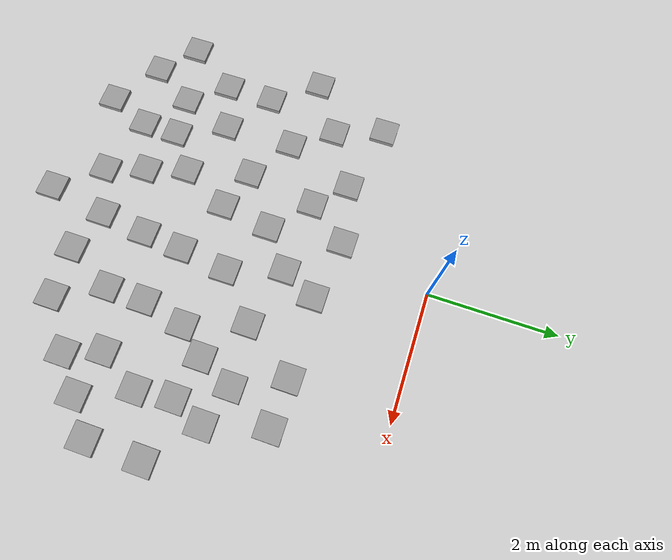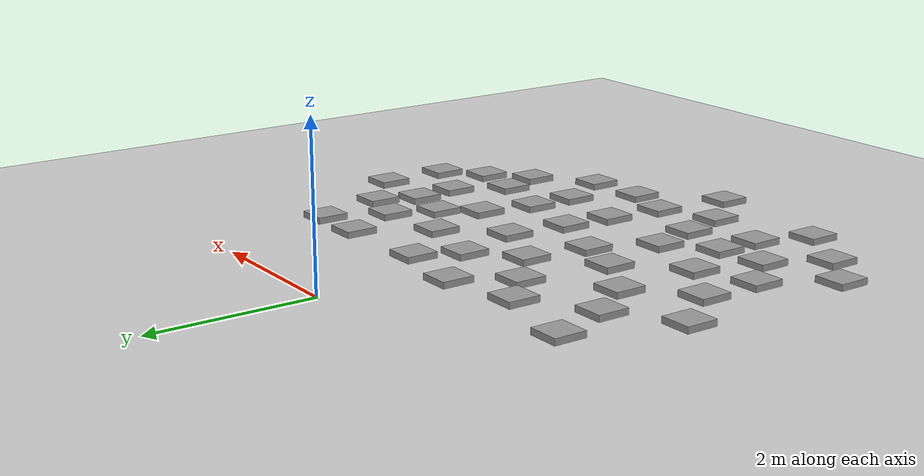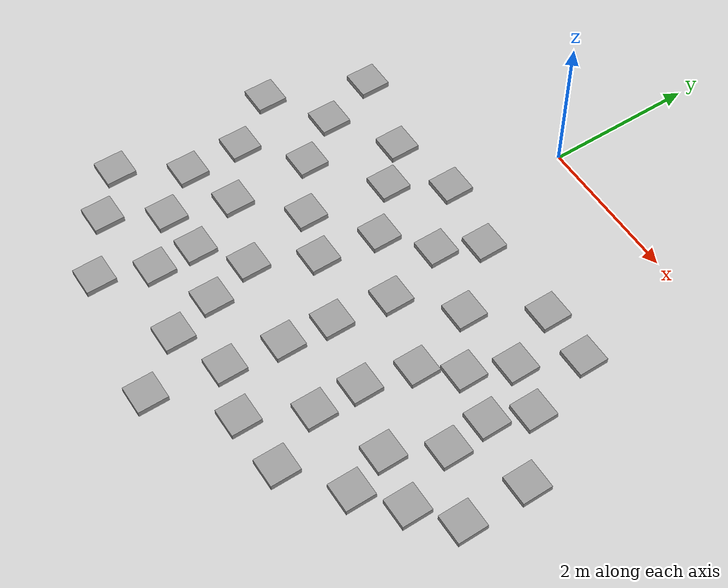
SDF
<sdf version="1.7">
 <world name="default">
  <light name="sun" type="directional">
   <pose>0 0 10 0 -0 0</pose>
   <diffuse>0.8 0.8 0.8 1</diffuse>
   <specular>0.2 0.2 0.2 1</specular>
   <attenuation>
    <range>1000</range>
    <constant>0.9</constant>
    <linear>0.01</linear>
    <quadratic>0.001</quadratic>
   </attenuation>
   <direction>-0.5 0.1 -0.9</direction>
   <spot><inner_angle>0</inner_angle><outer_angle>0</outer_angle><falloff>0</falloff></spot>
  </light>
  <model name="ground_plane">
   <static>1</static>
   <link name="link">
    <collision name="collision">
     <geometry><plane><normal>0 0 1</normal><size>100 100</size></plane></geometry>
     <surface>
      <contact><collide_bitmask>65535</collide_bitmask></contact>
      <friction><ode><mu>100</mu><mu2>50</mu2></ode></friction>
     </surface>
    </collision>
    <visual name="visual">
     <cast_shadows>0</cast_shadows>
     <geometry><plane><normal>0 0 1</normal><size>100 100</size></plane></geometry>
     <material>
      <script><uri>file://media/materials/scripts/gazebo.material</uri><name>Gazebo/Grey</name></script>
     </material>
    </visual>
   </link>
  </model>
  <gravity>0 0 -9.8</gravity>
  <magnetic_field>6e-06 2.3e-05 -4.2e-05</magnetic_field>
  <atmosphere type="adiabatic"/>
  <physics name="default_physics" default="0" type="ode">
   <max_step_size>0.001</max_step_size>
   <real_time_factor>1</real_time_factor>
   <real_time_update_rate>1000</real_time_update_rate>
  </physics>
  <scene><ambient>0.4 0.4 0.4 1</ambient><background>0.7 0.7 0.7 1</background><shadows>1</shadows></scene>
  <audio><device>default</device></audio>
  <spherical_coordinates>
   <surface_model>EARTH_WGS84</surface_model>
   <latitude_deg>0</latitude_deg>
   <longitude_deg>0</longitude_deg>
   <elevation>0</elevation>
   <heading_deg>0</heading_deg>
  </spherical_coordinates>
  <model name="0.4*0.4*0.08">
   <pose>-0.938095 -0.976748 0 0 -0 0</pose>
   <link name="Stairs_1">
    <visual name="Stairs_1_Visual_0">
     <pose>-0.8 -1.775 0.04 0 -0 0</pose>
     <geometry><box><size>0.4 0.4 0.08</size></box></geometry>
     <material>
      <script><uri>file://media/materials/scripts/gazebo.material</uri><name>Gazebo/Grey</name></script>
      <ambient>1 1 1 1</ambient>
     </material>
     <meta><layer>0</layer></meta>
    </visual>
    <collision name="Stairs_1_Collision_0">
     <geometry><box><size>0.4 0.4 0.08</size></box></geometry>
     <pose>-0.8 -1.775 0.04 0 -0 0</pose>
    </collision>
   </link>
   <static>1</static>
  </model>
  <model name="0.4*0.4*0.08_clone">
   <pose>0.553519 -0.838178 0 0 -0 0</pose>
   <link name="Stairs_1">
    <visual name="Stairs_1_Visual_0">
     <pose>-0.8 -1.775 0.04 0 -0 0</pose>
     <geometry><box><size>0.4 0.4 0.08</size></box></geometry>
     <material>
      <script><uri>file://media/materials/scripts/gazebo.material</uri><name>Gazebo/Grey</name></script>
      <ambient>1 1 1 1</ambient>
     </material>
     <meta><layer>0</layer></meta>
    </visual>
    <collision name="Stairs_1_Collision_0">
     <geometry><box><size>0.4 0.4 0.08</size></box></geometry>
     <pose>-0.8 -1.775 0.04 0 -0 0</pose>
    </collision>
   </link>
   <static>1</static>
  </model>
  <model name="0.4*0.4*0.08_clone_0">
   <pose>-0.038304 -0.313378 0 0 -0 0</pose>
   <link name="Stairs_1">
    <visual name="Stairs_1_Visual_0">
     <pose>-0.8 -1.775 0.04 0 -0 0</pose>
     <geometry><box><size>0.4 0.4 0.08</size></box></geometry>
     <material>
      <script><uri>file://media/materials/scripts/gazebo.material</uri><name>Gazebo/Grey</name></script>
      <ambient>1 1 1 1</ambient>
     </material>
     <meta><layer>0</layer></meta>
    </visual>
    <collision name="Stairs_1_Collision_0">
     <geometry><box><size>0.4 0.4 0.08</size></box></geometry>
     <pose>-0.8 -1.775 0.04 0 -0 0</pose>
    </collision>
   </link>
   <static>1</static>
  </model>
  <model name="0.4*0.4*0.08_clone_1">
   <pose>1.13438 -0.375687 0 0 -0 0</pose>
   <link name="Stairs_1">
    <visual name="Stairs_1_Visual_0">
     <pose>-0.8 -1.775 0.04 0 -0 0</pose>
     <geometry><box><size>0.4 0.4 0.08</size></box></geometry>
     <material>
      <script><uri>file://media/materials/scripts/gazebo.material</uri><name>Gazebo/Grey</name></script>
      <ambient>1 1 1 1</ambient>
     </material>
     <meta><layer>0</layer></meta>
    </visual>
    <collision name="Stairs_1_Collision_0">
     <geometry><box><size>0.4 0.4 0.08</size></box></geometry>
     <pose>-0.8 -1.775 0.04 0 -0 0</pose>
    </collision>
   </link>
   <static>1</static>
  </model>
  <model name="0.4*0.4*0.08_clone_2">
   <pose>1.41877 -1.22784 0 0 -0 0</pose>
   <link name="Stairs_1">
    <visual name="Stairs_1_Visual_0">
     <pose>-0.8 -1.775 0.04 0 -0 0</pose>
     <geometry><box><size>0.4 0.4 0.08</size></box></geometry>
     <material>
      <script><uri>file://media/materials/scripts/gazebo.material</uri><name>Gazebo/Grey</name></script>
      <ambient>1 1 1 1</ambient>
     </material>
     <meta><layer>0</layer></meta>
    </visual>
    <collision name="Stairs_1_Collision_0">
     <geometry><box><size>0.4 0.4 0.08</size></box></geometry>
     <pose>-0.8 -1.775 0.04 0 -0 0</pose>
    </collision>
   </link>
   <static>1</static>
  </model>
  <model name="0.4*0.4*0.08_clone_3">
   <pose>2.08527 -0.616545 0 0 -0 0</pose>
   <link name="Stairs_1">
    <visual name="Stairs_1_Visual_0">
     <pose>-0.8 -1.775 0.04 0 -0 0</pose>
     <geometry><box><size>0.4 0.4 0.08</size></box></geometry>
     <material>
      <script><uri>file://media/materials/scripts/gazebo.material</uri><name>Gazebo/Grey</name></script>
      <ambient>1 1 1 1</ambient>
     </material>
     <meta><layer>0</layer></meta>
    </visual>
    <collision name="Stairs_1_Collision_0">
     <geometry><box><size>0.4 0.4 0.08</size></box></geometry>
     <pose>-0.8 -1.775 0.04 0 -0 0</pose>
    </collision>
   </link>
   <static>1</static>
  </model>
  <model name="0.4*0.4*0.08_clone_4">
   <pose>2.65153 0.212197 0 0 -0 0</pose>
   <link name="Stairs_1">
    <visual name="Stairs_1_Visual_0">
     <pose>-0.8 -1.775 0.04 0 -0 0</pose>
     <geometry><box><size>0.4 0.4 0.08</size></box></geometry>
     <material>
      <script><uri>file://media/materials/scripts/gazebo.material</uri><name>Gazebo/Grey</name></script>
      <ambient>1 1 1 1</ambient>
     </material>
     <meta><layer>0</layer></meta>
    </visual>
    <collision name="Stairs_1_Collision_0">
     <geometry><box><size>0.4 0.4 0.08</size></box></geometry>
     <pose>-0.8 -1.775 0.04 0 -0 0</pose>
    </collision>
   </link>
   <static>1</static>
  </model>
  <model name="0.4*0.4*0.08_clone_5">
   <pose>1.39579 0.164665 0 0 -0 0</pose>
   <link name="Stairs_1">
    <visual name="Stairs_1_Visual_0">
     <pose>-0.8 -1.775 0.04 0 -0 0</pose>
     <geometry><box><size>0.4 0.4 0.08</size></box></geometry>
     <material>
      <script><uri>file://media/materials/scripts/gazebo.material</uri><name>Gazebo/Grey</name></script>
      <ambient>1 1 1 1</ambient>
     </material>
     <meta><layer>0</layer></meta>
    </visual>
    <collision name="Stairs_1_Collision_0">
     <geometry><box><size>0.4 0.4 0.08</size></box></geometry>
     <pose>-0.8 -1.775 0.04 0 -0 0</pose>
    </collision>
   </link>
   <static>1</static>
  </model>
  <model name="0.4*0.4*0.08_clone_6">
   <pose>0.429247 0.328334 0 0 -0 0</pose>
   <link name="Stairs_1">
    <visual name="Stairs_1_Visual_0">
     <pose>-0.8 -1.775 0.04 0 -0 0</pose>
     <geometry><box><size>0.4 0.4 0.08</size></box></geometry>
     <material>
      <script><uri>file://media/materials/scripts/gazebo.material</uri><name>Gazebo/Grey</name></script>
      <ambient>1 1 1 1</ambient>
     </material>
     <meta><layer>0</layer></meta>
    </visual>
    <collision name="Stairs_1_Collision_0">
     <geometry><box><size>0.4 0.4 0.08</size></box></geometry>
     <pose>-0.8 -1.775 0.04 0 -0 0</pose>
    </collision>
   </link>
   <static>1</static>
  </model>
  <model name="0.4*0.4*0.08_clone_7">
   <pose>-0.520775 0.13426 0 0 -0 0</pose>
   <link name="Stairs_1">
    <visual name="Stairs_1_Visual_0">
     <pose>-0.8 -1.775 0.04 0 -0 0</pose>
     <geometry><box><size>0.4 0.4 0.08</size></box></geometry>
     <material>
      <script><uri>file://media/materials/scripts/gazebo.material</uri><name>Gazebo/Grey</name></script>
      <ambient>1 1 1 1</ambient>
     </material>
     <meta><layer>0</layer></meta>
    </visual>
    <collision name="Stairs_1_Collision_0">
     <geometry><box><size>0.4 0.4 0.08</size></box></geometry>
     <pose>-0.8 -1.775 0.04 0 -0 0</pose>
    </collision>
   </link>
   <static>1</static>
  </model>
  <model name="0.4*0.4*0.08_clone_8">
   <pose>-1.3777 -0.37098 0 0 -0 0</pose>
   <link name="Stairs_1">
    <visual name="Stairs_1_Visual_0">
     <pose>-0.8 -1.775 0.04 0 -0 0</pose>
     <geometry><box><size>0.4 0.4 0.08</size></box></geometry>
     <material>
      <script><uri>file://media/materials/scripts/gazebo.material</uri><name>Gazebo/Grey</name></script>
      <ambient>1 1 1 1</ambient>
     </material>
     <meta><layer>0</layer></meta>
    </visual>
    <collision name="Stairs_1_Collision_0">
     <geometry><box><size>0.4 0.4 0.08</size></box></geometry>
     <pose>-0.8 -1.775 0.04 0 -0 0</pose>
    </collision>
   </link>
   <static>1</static>
  </model>
  <model name="0.4*0.4*0.08_clone_9">
   <pose>-0.226018 -1.42801 0 0 -0 0</pose>
   <link name="Stairs_1">
    <visual name="Stairs_1_Visual_0">
     <pose>-0.8 -1.775 0.04 0 -0 0</pose>
     <geometry><box><size>0.4 0.4 0.08</size></box></geometry>
     <material>
      <script><uri>file://media/materials/scripts/gazebo.material</uri><name>Gazebo/Grey</name></script>
      <ambient>1 1 1 1</ambient>
     </material>
     <meta><layer>0</layer></meta>
    </visual>
    <collision name="Stairs_1_Collision_0">
     <geometry><box><size>0.4 0.4 0.08</size></box></geometry>
     <pose>-0.8 -1.775 0.04 0 -0 0</pose>
    </collision>
   </link>
   <static>1</static>
  </model>
  <model name="0.4*0.4*0.08_clone_10">
   <pose>0.423919 -1.64325 0 0 -0 0</pose>
   <link name="Stairs_1">
    <visual name="Stairs_1_Visual_0">
     <pose>-0.8 -1.775 0.04 0 -0 0</pose>
     <geometry><box><size>0.4 0.4 0.08</size></box></geometry>
     <material>
      <script><uri>file://media/materials/scripts/gazebo.material</uri><name>Gazebo/Grey</name></script>
      <ambient>1 1 1 1</ambient>
     </material>
     <meta><layer>0</layer></meta>
    </visual>
    <collision name="Stairs_1_Collision_0">
     <geometry><box><size>0.4 0.4 0.08</size></box></geometry>
     <pose>-0.8 -1.775 0.04 0 -0 0</pose>
    </collision>
   </link>
   <static>1</static>
  </model>
  <model name="0.4*0.4*0.08_clone_11">
   <pose>2.41393 -1.52262 0 0 -0 0</pose>
   <link name="Stairs_1">
    <visual name="Stairs_1_Visual_0">
     <pose>-0.8 -1.775 0.04 0 -0 0</pose>
     <geometry><box><size>0.4 0.4 0.08</size></box></geometry>
     <material>
      <script><uri>file://media/materials/scripts/gazebo.material</uri><name>Gazebo/Grey</name></script>
      <ambient>1 1 1 1</ambient>
     </material>
     <meta><layer>0</layer></meta>
    </visual>
    <collision name="Stairs_1_Collision_0">
     <geometry><box><size>0.4 0.4 0.08</size></box></geometry>
     <pose>-0.8 -1.775 0.04 0 -0 0</pose>
    </collision>
   </link>
   <static>1</static>
  </model>
  <model name="0.4*0.4*0.08_clone_12">
   <pose>2.77082 -1.09886 0 0 -0 0</pose>
   <link name="Stairs_1">
    <visual name="Stairs_1_Visual_0">
     <pose>-0.8 -1.775 0.04 0 -0 0</pose>
     <geometry><box><size>0.4 0.4 0.08</size></box></geometry>
     <material>
      <script><uri>file://media/materials/scripts/gazebo.material</uri><name>Gazebo/Grey</name></script>
      <ambient>1 1 1 1</ambient>
     </material>
     <meta><layer>0</layer></meta>
    </visual>
    <collision name="Stairs_1_Collision_0">
     <geometry><box><size>0.4 0.4 0.08</size></box></geometry>
     <pose>-0.8 -1.775 0.04 0 -0 0</pose>
    </collision>
   </link>
   <static>1</static>
  </model>
  <model name="0.4*0.4*0.08_clone_13">
   <pose>3.02679 -0.53823 0 0 -0 0</pose>
   <link name="Stairs_1">
    <visual name="Stairs_1_Visual_0">
     <pose>-0.8 -1.775 0.04 0 -0 0</pose>
     <geometry><box><size>0.4 0.4 0.08</size></box></geometry>
     <material>
      <script><uri>file://media/materials/scripts/gazebo.material</uri><name>Gazebo/Grey</name></script>
      <ambient>1 1 1 1</ambient>
     </material>
     <meta><layer>0</layer></meta>
    </visual>
    <collision name="Stairs_1_Collision_0">
     <geometry><box><size>0.4 0.4 0.08</size></box></geometry>
     <pose>-0.8 -1.775 0.04 0 -0 0</pose>
    </collision>
   </link>
   <static>1</static>
  </model>
  <model name="0.4*0.4*0.08_clone_14">
   <pose>1.31262 -2.00503 0 0 -0 0</pose>
   <link name="Stairs_1">
    <visual name="Stairs_1_Visual_0">
     <pose>-0.8 -1.775 0.04 0 -0 0</pose>
     <geometry><box><size>0.4 0.4 0.08</size></box></geometry>
     <material>
      <script><uri>file://media/materials/scripts/gazebo.material</uri><name>Gazebo/Grey</name></script>
      <ambient>1 1 1 1</ambient>
     </material>
     <meta><layer>0</layer></meta>
    </visual>
    <collision name="Stairs_1_Collision_0">
     <geometry><box><size>0.4 0.4 0.08</size></box></geometry>
     <pose>-0.8 -1.775 0.04 0 -0 0</pose>
    </collision>
   </link>
   <static>1</static>
  </model>
  <model name="0.4*0.4*0.08_clone_15">
   <pose>0.035519 -2.41441 0 0 -0 0</pose>
   <link name="Stairs_1">
    <visual name="Stairs_1_Visual_0">
     <pose>-0.8 -1.775 0.04 0 -0 0</pose>
     <geometry><box><size>0.4 0.4 0.08</size></box></geometry>
     <material>
      <script><uri>file://media/materials/scripts/gazebo.material</uri><name>Gazebo/Grey</name></script>
      <ambient>1 1 1 1</ambient>
     </material>
     <meta><layer>0</layer></meta>
    </visual>
    <collision name="Stairs_1_Collision_0">
     <geometry><box><size>0.4 0.4 0.08</size></box></geometry>
     <pose>-0.8 -1.775 0.04 0 -0 0</pose>
    </collision>
   </link>
   <static>1</static>
  </model>
  <model name="0.4*0.4*0.08_clone_16">
   <pose>-0.921731 -2.08516 0 0 -0 0</pose>
   <link name="Stairs_1">
    <visual name="Stairs_1_Visual_0">
     <pose>-0.8 -1.775 0.04 0 -0 0</pose>
     <geometry><box><size>0.4 0.4 0.08</size></box></geometry>
     <material>
      <script><uri>file://media/materials/scripts/gazebo.material</uri><name>Gazebo/Grey</name></script>
      <ambient>1 1 1 1</ambient>
     </material>
     <meta><layer>0</layer></meta>
    </visual>
    <collision name="Stairs_1_Collision_0">
     <geometry><box><size>0.4 0.4 0.08</size></box></geometry>
     <pose>-0.8 -1.775 0.04 0 -0 0</pose>
    </collision>
   </link>
   <static>1</static>
  </model>
  <model name="0.4*0.4*0.08_clone_17">
   <pose>-1.64301 -1.56516 0 0 -0 0</pose>
   <link name="Stairs_1">
    <visual name="Stairs_1_Visual_0">
     <pose>-0.8 -1.775 0.04 0 -0 0</pose>
     <geometry><box><size>0.4 0.4 0.08</size></box></geometry>
     <material>
      <script><uri>file://media/materials/scripts/gazebo.material</uri><name>Gazebo/Grey</name></script>
      <ambient>1 1 1 1</ambient>
     </material>
     <meta><layer>0</layer></meta>
    </visual>
    <collision name="Stairs_1_Collision_0">
     <geometry><box><size>0.4 0.4 0.08</size></box></geometry>
     <pose>-0.8 -1.775 0.04 0 -0 0</pose>
    </collision>
   </link>
   <static>1</static>
  </model>
  <model name="0.4*0.4*0.08_clone_18">
   <pose>2.2515 -2.20854 0 0 -0 0</pose>
   <link name="Stairs_1">
    <visual name="Stairs_1_Visual_0">
     <pose>-0.8 -1.775 0.04 0 -0 0</pose>
     <geometry><box><size>0.4 0.4 0.08</size></box></geometry>
     <material>
      <script><uri>file://media/materials/scripts/gazebo.material</uri><name>Gazebo/Grey</name></script>
      <ambient>1 1 1 1</ambient>
     </material>
     <meta><layer>0</layer></meta>
    </visual>
    <collision name="Stairs_1_Collision_0">
     <geometry><box><size>0.4 0.4 0.08</size></box></geometry>
     <pose>-0.8 -1.775 0.04 0 -0 0</pose>
    </collision>
   </link>
   <static>1</static>
  </model>
  <model name="0.4*0.4*0.08_clone_19">
   <pose>1.24977 -2.64372 0 0 -0 0</pose>
   <link name="Stairs_1">
    <visual name="Stairs_1_Visual_0">
     <pose>-0.8 -1.775 0.04 0 -0 0</pose>
     <geometry><box><size>0.4 0.4 0.08</size></box></geometry>
     <material>
      <script><uri>file://media/materials/scripts/gazebo.material</uri><name>Gazebo/Grey</name></script>
      <ambient>1 1 1 1</ambient>
     </material>
     <meta><layer>0</layer></meta>
    </visual>
    <collision name="Stairs_1_Collision_0">
     <geometry><box><size>0.4 0.4 0.08</size></box></geometry>
     <pose>-0.8 -1.775 0.04 0 -0 0</pose>
    </collision>
   </link>
   <static>1</static>
  </model>
  <model name="0.4*0.4*0.08_clone_20">
   <pose>0.233358 -3.04925 0 0 -0 0</pose>
   <link name="Stairs_1">
    <visual name="Stairs_1_Visual_0">
     <pose>-0.8 -1.775 0.04 0 -0 0</pose>
     <geometry><box><size>0.4 0.4 0.08</size></box></geometry>
     <material>
      <script><uri>file://media/materials/scripts/gazebo.material</uri><name>Gazebo/Grey</name></script>
      <ambient>1 1 1 1</ambient>
     </material>
     <meta><layer>0</layer></meta>
    </visual>
    <collision name="Stairs_1_Collision_0">
     <geometry><box><size>0.4 0.4 0.08</size></box></geometry>
     <pose>-0.8 -1.775 0.04 0 -0 0</pose>
    </collision>
   </link>
   <static>1</static>
  </model>
  <model name="0.4*0.4*0.08_clone_21">
   <pose>2.24085 -2.82424 0 0 -0 0</pose>
   <link name="Stairs_1">
    <visual name="Stairs_1_Visual_0">
     <pose>-0.8 -1.775 0.04 0 -0 0</pose>
     <geometry><box><size>0.4 0.4 0.08</size></box></geometry>
     <material>
      <script><uri>file://media/materials/scripts/gazebo.material</uri><name>Gazebo/Grey</name></script>
      <ambient>1 1 1 1</ambient>
     </material>
     <meta><layer>0</layer></meta>
    </visual>
    <collision name="Stairs_1_Collision_0">
     <geometry><box><size>0.4 0.4 0.08</size></box></geometry>
     <pose>-0.8 -1.775 0.04 0 -0 0</pose>
    </collision>
   </link>
   <static>1</static>
  </model>
  <model name="0.4*0.4*0.08_clone_22">
   <pose>3.13891 -2.46257 0 0 -0 0</pose>
   <link name="Stairs_1">
    <visual name="Stairs_1_Visual_0">
     <pose>-0.8 -1.775 0.04 0 -0 0</pose>
     <geometry><box><size>0.4 0.4 0.08</size></box></geometry>
     <material>
      <script><uri>file://media/materials/scripts/gazebo.material</uri><name>Gazebo/Grey</name></script>
      <ambient>1 1 1 1</ambient>
     </material>
     <meta><layer>0</layer></meta>
    </visual>
    <collision name="Stairs_1_Collision_0">
     <geometry><box><size>0.4 0.4 0.08</size></box></geometry>
     <pose>-0.8 -1.775 0.04 0 -0 0</pose>
    </collision>
   </link>
   <static>1</static>
  </model>
  <model name="0.4*0.4*0.08_clone_23">
   <pose>3.50056 -1.81908 0 0 -0 0</pose>
   <link name="Stairs_1">
    <visual name="Stairs_1_Visual_0">
     <pose>-0.8 -1.775 0.04 0 -0 0</pose>
     <geometry><box><size>0.4 0.4 0.08</size></box></geometry>
     <material>
      <script><uri>file://media/materials/scripts/gazebo.material</uri><name>Gazebo/Grey</name></script>
      <ambient>1 1 1 1</ambient>
     </material>
     <meta><layer>0</layer></meta>
    </visual>
    <collision name="Stairs_1_Collision_0">
     <geometry><box><size>0.4 0.4 0.08</size></box></geometry>
     <pose>-0.8 -1.775 0.04 0 -0 0</pose>
    </collision>
   </link>
   <static>1</static>
  </model>
  <model name="0.4*0.4*0.08_clone_17_clone">
   <pose>-2.16736 -0.874596 0 0 -0 0</pose>
   <link name="Stairs_1">
    <visual name="Stairs_1_Visual_0">
     <pose>-0.8 -1.775 0.04 0 -0 0</pose>
     <geometry><box><size>0.4 0.4 0.08</size></box></geometry>
     <material>
      <script><uri>file://media/materials/scripts/gazebo.material</uri><name>Gazebo/Grey</name></script>
      <ambient>1 1 1 1</ambient>
     </material>
     <meta><layer>0</layer></meta>
    </visual>
    <collision name="Stairs_1_Collision_0">
     <geometry><box><size>0.4 0.4 0.08</size></box></geometry>
     <pose>-0.8 -1.775 0.04 0 -0 0</pose>
    </collision>
   </link>
   <static>1</static>
  </model>
  <model name="0.4*0.4*0.08_clone_17_clone_0">
   <pose>-1.64612 0.405641 0 0 -0 0</pose>
   <link name="Stairs_1">
    <visual name="Stairs_1_Visual_0">
     <pose>-0.8 -1.775 0.04 0 -0 0</pose>
     <geometry><box><size>0.4 0.4 0.08</size></box></geometry>
     <material>
      <script><uri>file://media/materials/scripts/gazebo.material</uri><name>Gazebo/Grey</name></script>
      <ambient>1 1 1 1</ambient>
     </material>
     <meta><layer>0</layer></meta>
    </visual>
    <collision name="Stairs_1_Collision_0">
     <geometry><box><size>0.4 0.4 0.08</size></box></geometry>
     <pose>-0.8 -1.775 0.04 0 -0 0</pose>
    </collision>
   </link>
   <static>1</static>
  </model>
  <model name="0.4*0.4*0.08_clone_17_clone_1">
   <pose>3.38321 0.188589 0 0 -0 0</pose>
   <link name="Stairs_1">
    <visual name="Stairs_1_Visual_0">
     <pose>-0.8 -1.775 0.04 0 -0 0</pose>
     <geometry><box><size>0.4 0.4 0.08</size></box></geometry>
     <material>
      <script><uri>file://media/materials/scripts/gazebo.material</uri><name>Gazebo/Grey</name></script>
      <ambient>1 1 1 1</ambient>
     </material>
     <meta><layer>0</layer></meta>
    </visual>
    <collision name="Stairs_1_Collision_0">
     <geometry><box><size>0.4 0.4 0.08</size></box></geometry>
     <pose>-0.8 -1.775 0.04 0 -0 0</pose>
    </collision>
   </link>
   <static>1</static>
  </model>
  <model name="0.4*0.4*0.08_clone_17_clone_2">
   <pose>3.64677 -0.738147 0 0 -0 0</pose>
   <link name="Stairs_1">
    <visual name="Stairs_1_Visual_0">
     <pose>-0.8 -1.775 0.04 0 -0 0</pose>
     <geometry><box><size>0.4 0.4 0.08</size></box></geometry>
     <material>
      <script><uri>file://media/materials/scripts/gazebo.material</uri><name>Gazebo/Grey</name></script>
      <ambient>1 1 1 1</ambient>
     </material>
     <meta><layer>0</layer></meta>
    </visual>
    <collision name="Stairs_1_Collision_0">
     <geometry><box><size>0.4 0.4 0.08</size></box></geometry>
     <pose>-0.8 -1.775 0.04 0 -0 0</pose>
    </collision>
   </link>
   <static>1</static>
  </model>
  <model name="0.4*0.4*0.08_clone_17_clone_3">
   <pose>3.4372 -1.24293 0 0 -0 0</pose>
   <link name="Stairs_1">
    <visual name="Stairs_1_Visual_0">
     <pose>-0.8 -1.775 0.04 0 -0 0</pose>
     <geometry><box><size>0.4 0.4 0.08</size></box></geometry>
     <material>
      <script><uri>file://media/materials/scripts/gazebo.material</uri><name>Gazebo/Grey</name></script>
      <ambient>1 1 1 1</ambient>
     </material>
     <meta><layer>0</layer></meta>
    </visual>
    <collision name="Stairs_1_Collision_0">
     <geometry><box><size>0.4 0.4 0.08</size></box></geometry>
     <pose>-0.8 -1.775 0.04 0 -0 0</pose>
    </collision>
   </link>
   <static>1</static>
  </model>
  <model name="0.4*0.4*0.08_clone_17_clone_4">
   <pose>4.34779 -1.34024 0 0 -0 0</pose>
   <link name="Stairs_1">
    <visual name="Stairs_1_Visual_0">
     <pose>-0.8 -1.775 0.04 0 -0 0</pose>
     <geometry><box><size>0.4 0.4 0.08</size></box></geometry>
     <material>
      <script><uri>file://media/materials/scripts/gazebo.material</uri><name>Gazebo/Grey</name></script>
      <ambient>1 1 1 1</ambient>
     </material>
     <meta><layer>0</layer></meta>
    </visual>
    <collision name="Stairs_1_Collision_0">
     <geometry><box><size>0.4 0.4 0.08</size></box></geometry>
     <pose>-0.8 -1.775 0.04 0 -0 0</pose>
    </collision>
   </link>
   <static>1</static>
  </model>
  <model name="0.4*0.4*0.08_clone_17_clone_5">
   <pose>4.33878 -2.20539 0 0 -0 0</pose>
   <link name="Stairs_1">
    <visual name="Stairs_1_Visual_0">
     <pose>-0.8 -1.775 0.04 0 -0 0</pose>
     <geometry><box><size>0.4 0.4 0.08</size></box></geometry>
     <material>
      <script><uri>file://media/materials/scripts/gazebo.material</uri><name>Gazebo/Grey</name></script>
      <ambient>1 1 1 1</ambient>
     </material>
     <meta><layer>0</layer></meta>
    </visual>
    <collision name="Stairs_1_Collision_0">
     <geometry><box><size>0.4 0.4 0.08</size></box></geometry>
     <pose>-0.8 -1.775 0.04 0 -0 0</pose>
    </collision>
   </link>
   <static>1</static>
  </model>
  <model name="0.4*0.4*0.08_clone_17_clone_6">
   <pose>3.84366 -2.60312 0 0 -0 0</pose>
   <link name="Stairs_1">
    <visual name="Stairs_1_Visual_0">
     <pose>-0.8 -1.775 0.04 0 -0 0</pose>
     <geometry><box><size>0.4 0.4 0.08</size></box></geometry>
     <material>
      <script><uri>file://media/materials/scripts/gazebo.material</uri><name>Gazebo/Grey</name></script>
      <ambient>1 1 1 1</ambient>
     </material>
     <meta><layer>0</layer></meta>
    </visual>
    <collision name="Stairs_1_Collision_0">
     <geometry><box><size>0.4 0.4 0.08</size></box></geometry>
     <pose>-0.8 -1.775 0.04 0 -0 0</pose>
    </collision>
   </link>
   <static>1</static>
  </model>
  <model name="0.4*0.4*0.08_clone_17_clone_7">
   <pose>3.34348 -3.01843 0 0 -0 0</pose>
   <link name="Stairs_1">
    <visual name="Stairs_1_Visual_0">
     <pose>-0.8 -1.775 0.04 0 -0 0</pose>
     <geometry><box><size>0.4 0.4 0.08</size></box></geometry>
     <material>
      <script><uri>file://media/materials/scripts/gazebo.material</uri><name>Gazebo/Grey</name></script>
      <ambient>1 1 1 1</ambient>
     </material>
     <meta><layer>0</layer></meta>
    </visual>
    <collision name="Stairs_1_Collision_0">
     <geometry><box><size>0.4 0.4 0.08</size></box></geometry>
     <pose>-0.8 -1.775 0.04 0 -0 0</pose>
    </collision>
   </link>
   <static>1</static>
  </model>
  <model name="0.4*0.4*0.08_clone_17_clone_8">
   <pose>2.62491 -3.5518 0 0 -0 0</pose>
   <link name="Stairs_1">
    <visual name="Stairs_1_Visual_0">
     <pose>-0.8 -1.775 0.04 0 -0 0</pose>
     <geometry><box><size>0.4 0.4 0.08</size></box></geometry>
     <material>
      <script><uri>file://media/materials/scripts/gazebo.material</uri><name>Gazebo/Grey</name></script>
      <ambient>1 1 1 1</ambient>
     </material>
     <meta><layer>0</layer></meta>
    </visual>
    <collision name="Stairs_1_Collision_0">
     <geometry><box><size>0.4 0.4 0.08</size></box></geometry>
     <pose>-0.8 -1.775 0.04 0 -0 0</pose>
    </collision>
   </link>
   <static>1</static>
  </model>
  <model name="0.4*0.4*0.08_clone_17_clone_9">
   <pose>1.836 -3.59412 0 0 -0 0</pose>
   <link name="Stairs_1">
    <visual name="Stairs_1_Visual_0">
     <pose>-0.8 -1.775 0.04 0 -0 0</pose>
     <geometry><box><size>0.4 0.4 0.08</size></box></geometry>
     <material>
      <script><uri>file://media/materials/scripts/gazebo.material</uri><name>Gazebo/Grey</name></script>
      <ambient>1 1 1 1</ambient>
     </material>
     <meta><layer>0</layer></meta>
    </visual>
    <collision name="Stairs_1_Collision_0">
     <geometry><box><size>0.4 0.4 0.08</size></box></geometry>
     <pose>-0.8 -1.775 0.04 0 -0 0</pose>
    </collision>
   </link>
   <static>1</static>
  </model>
  <model name="0.4*0.4*0.08_clone_17_clone_10">
   <pose>1.15479 -3.38586 0 0 -0 0</pose>
   <link name="Stairs_1">
    <visual name="Stairs_1_Visual_0">
     <pose>-0.8 -1.775 0.04 0 -0 0</pose>
     <geometry><box><size>0.4 0.4 0.08</size></box></geometry>
     <material>
      <script><uri>file://media/materials/scripts/gazebo.material</uri><name>Gazebo/Grey</name></script>
      <ambient>1 1 1 1</ambient>
     </material>
     <meta><layer>0</layer></meta>
    </visual>
    <collision name="Stairs_1_Collision_0">
     <geometry><box><size>0.4 0.4 0.08</size></box></geometry>
     <pose>-0.8 -1.775 0.04 0 -0 0</pose>
    </collision>
   </link>
   <static>1</static>
  </model>
  <model name="0.4*0.4*0.08_clone_17_clone_11">
   <pose>0.431122 -3.67482 0 0 -0 0</pose>
   <link name="Stairs_1">
    <visual name="Stairs_1_Visual_0">
     <pose>-0.8 -1.775 0.04 0 -0 0</pose>
     <geometry><box><size>0.4 0.4 0.08</size></box></geometry>
     <material>
      <script><uri>file://media/materials/scripts/gazebo.material</uri><name>Gazebo/Grey</name></script>
      <ambient>1 1 1 1</ambient>
     </material>
     <meta><layer>0</layer></meta>
    </visual>
    <collision name="Stairs_1_Collision_0">
     <geometry><box><size>0.4 0.4 0.08</size></box></geometry>
     <pose>-0.8 -1.775 0.04 0 -0 0</pose>
    </collision>
   </link>
   <static>1</static>
  </model>
  <model name="0.4*0.4*0.08_clone_17_clone_12">
   <pose>-0.539487 -3.40525 0 0 -0 0</pose>
   <link name="Stairs_1">
    <visual name="Stairs_1_Visual_0">
     <pose>-0.8 -1.775 0.04 0 -0 0</pose>
     <geometry><box><size>0.4 0.4 0.08</size></box></geometry>
     <material>
      <script><uri>file://media/materials/scripts/gazebo.material</uri><name>Gazebo/Grey</name></script>
      <ambient>1 1 1 1</ambient>
     </material>
     <meta><layer>0</layer></meta>
    </visual>
    <collision name="Stairs_1_Collision_0">
     <geometry><box><size>0.4 0.4 0.08</size></box></geometry>
     <pose>-0.8 -1.775 0.04 0 -0 0</pose>
    </collision>
   </link>
   <static>1</static>
  </model>
  <model name="0.4*0.4*0.08_clone_17_clone_13">
   <pose>-0.537018 -2.83631 0 0 -0 0</pose>
   <link name="Stairs_1">
    <visual name="Stairs_1_Visual_0">
     <pose>-0.8 -1.775 0.04 0 -0 0</pose>
     <geometry><box><size>0.4 0.4 0.08</size></box></geometry>
     <material>
      <script><uri>file://media/materials/scripts/gazebo.material</uri><name>Gazebo/Grey</name></script>
      <ambient>1 1 1 1</ambient>
     </material>
     <meta><layer>0</layer></meta>
    </visual>
    <collision name="Stairs_1_Collision_0">
     <geometry><box><size>0.4 0.4 0.08</size></box></geometry>
     <pose>-0.8 -1.775 0.04 0 -0 0</pose>
    </collision>
   </link>
   <static>1</static>
  </model>
  <model name="0.4*0.4*0.08_clone_17_clone_14">
   <pose>-1.17805 -2.89492 0 0 -0 0</pose>
   <link name="Stairs_1">
    <visual name="Stairs_1_Visual_0">
     <pose>-0.8 -1.775 0.04 0 -0 0</pose>
     <geometry><box><size>0.4 0.4 0.08</size></box></geometry>
     <material>
      <script><uri>file://media/materials/scripts/gazebo.material</uri><name>Gazebo/Grey</name></script>
      <ambient>1 1 1 1</ambient>
     </material>
     <meta><layer>0</layer></meta>
    </visual>
    <collision name="Stairs_1_Collision_0">
     <geometry><box><size>0.4 0.4 0.08</size></box></geometry>
     <pose>-0.8 -1.775 0.04 0 -0 0</pose>
    </collision>
   </link>
   <static>1</static>
  </model>
  <model name="0.4*0.4*0.08_clone_17_clone_15">
   <pose>-1.65156 -2.32917 0 0 -0 0</pose>
   <link name="Stairs_1">
    <visual name="Stairs_1_Visual_0">
     <pose>-0.8 -1.775 0.04 0 -0 0</pose>
     <geometry><box><size>0.4 0.4 0.08</size></box></geometry>
     <material>
      <script><uri>file://media/materials/scripts/gazebo.material</uri><name>Gazebo/Grey</name></script>
      <ambient>1 1 1 1</ambient>
     </material>
     <meta><layer>0</layer></meta>
    </visual>
    <collision name="Stairs_1_Collision_0">
     <geometry><box><size>0.4 0.4 0.08</size></box></geometry>
     <pose>-0.8 -1.775 0.04 0 -0 0</pose>
    </collision>
   </link>
   <static>1</static>
  </model>
  <model name="0.4*0.4*0.08_clone_17_clone_16">
   <pose>-2.17008 -3.10838 0 0 -0 0</pose>
   <link name="Stairs_1">
    <visual name="Stairs_1_Visual_0">
     <pose>-0.8 -1.775 0.04 0 -0 0</pose>
     <geometry><box><size>0.4 0.4 0.08</size></box></geometry>
     <material>
      <script><uri>file://media/materials/scripts/gazebo.material</uri><name>Gazebo/Grey</name></script>
      <ambient>1 1 1 1</ambient>
     </material>
     <meta><layer>0</layer></meta>
    </visual>
    <collision name="Stairs_1_Collision_0">
     <geometry><box><size>0.4 0.4 0.08</size></box></geometry>
     <pose>-0.8 -1.775 0.04 0 -0 0</pose>
    </collision>
   </link>
   <static>1</static>
  </model>
  <model name="0.4*0.4*0.08_clone_17_clone_17">
   <pose>-1.59973 -3.5757 0 0 -0 0</pose>
   <link name="Stairs_1">
    <visual name="Stairs_1_Visual_0">
     <pose>-0.8 -1.775 0.04 0 -0 0</pose>
     <geometry><box><size>0.4 0.4 0.08</size></box></geometry>
     <material>
      <script><uri>file://media/materials/scripts/gazebo.material</uri><name>Gazebo/Grey</name></script>
      <ambient>1 1 1 1</ambient>
     </material>
     <meta><layer>0</layer></meta>
    </visual>
    <collision name="Stairs_1_Collision_0">
     <geometry><box><size>0.4 0.4 0.08</size></box></geometry>
     <pose>-0.8 -1.775 0.04 0 -0 0</pose>
    </collision>
   </link>
   <static>1</static>
  </model>
  <model name="0.4*0.4*0.08_clone_17_clone_18">
   <pose>-0.821871 -4.08224 0 0 -0 0</pose>
   <link name="Stairs_1">
    <visual name="Stairs_1_Visual_0">
     <pose>-0.8 -1.775 0.04 0 -0 0</pose>
     <geometry><box><size>0.4 0.4 0.08</size></box></geometry>
     <material>
      <script><uri>file://media/materials/scripts/gazebo.material</uri><name>Gazebo/Grey</name></script>
      <ambient>1 1 1 1</ambient>
     </material>
     <meta><layer>0</layer></meta>
    </visual>
    <collision name="Stairs_1_Collision_0">
     <geometry><box><size>0.4 0.4 0.08</size></box></geometry>
     <pose>-0.8 -1.775 0.04 0 -0 0</pose>
    </collision>
   </link>
   <static>1</static>
  </model>
  <model name="0.4*0.4*0.08_clone_17_clone_19">
   <pose>0.984984 -4.34307 0 0 -0 0</pose>
   <link name="Stairs_1">
    <visual name="Stairs_1_Visual_0">
     <pose>-0.8 -1.775 0.04 0 -0 0</pose>
     <geometry><box><size>0.4 0.4 0.08</size></box></geometry>
     <material>
      <script><uri>file://media/materials/scripts/gazebo.material</uri><name>Gazebo/Grey</name></script>
      <ambient>1 1 1 1</ambient>
     </material>
     <meta><layer>0</layer></meta>
    </visual>
    <collision name="Stairs_1_Collision_0">
     <geometry><box><size>0.4 0.4 0.08</size></box></geometry>
     <pose>-0.8 -1.775 0.04 0 -0 0</pose>
    </collision>
   </link>
   <static>1</static>
  </model>
 </world>
</sdf>
